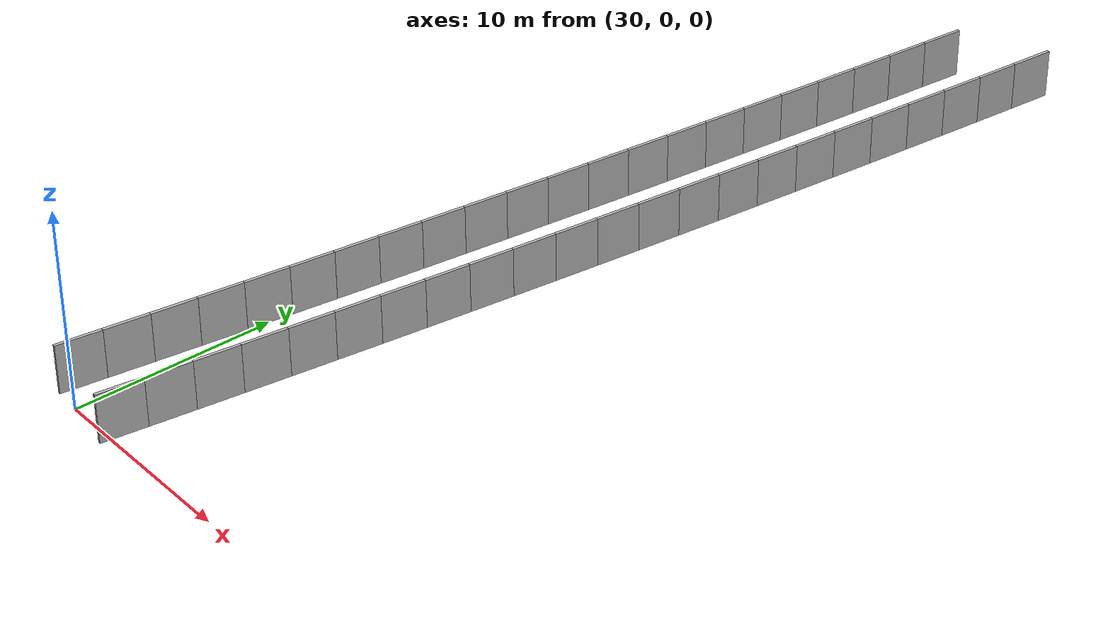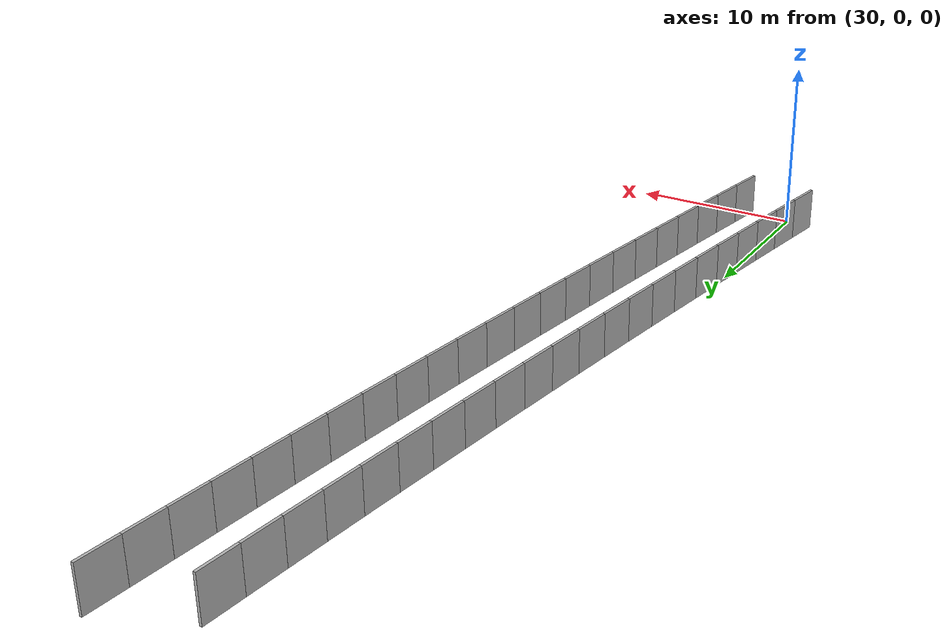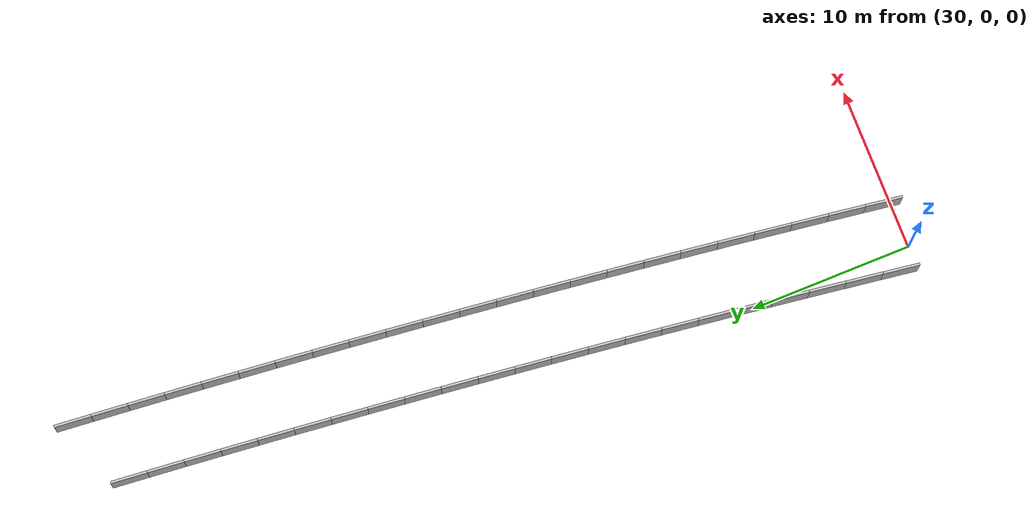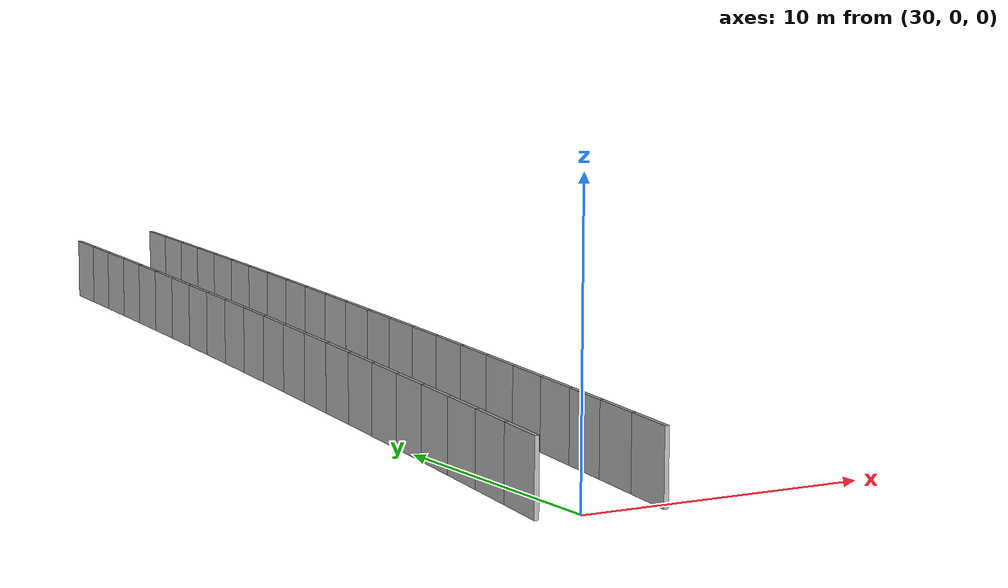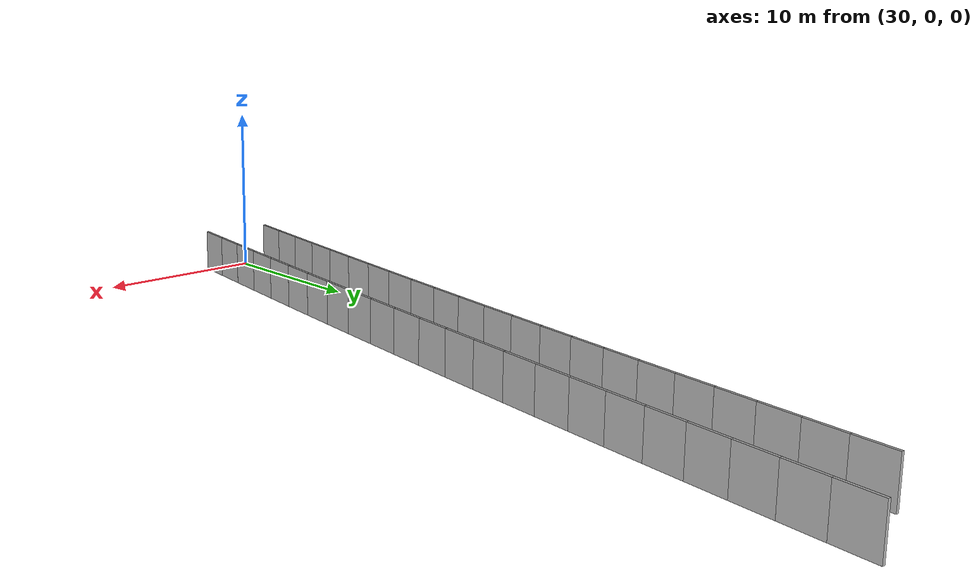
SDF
<?xml version="1.0" ?>
<sdf version="1.6">
  <model name="sps_4622">
    <pose frame="">0 0 0 0 -0 0</pose>
    <static>1</static>
    <self_collide>0</self_collide>
    <allow_auto_disable>0</allow_auto_disable>
    <link name="Wall4487">
      <kinematic>0</kinematic>
      <gravity>1</gravity>
      <self_collide>0</self_collide>
      <collision name="collision">
        <geometry>
          <box>
            <size>2.25472 0.15 2.5</size>
          </box>
        </geometry>
        <pose frame="">0 0 0 0 -0 0</pose>
      </collision>
      <visual name="visual">
        <geometry>
          <box>
            <size>2.25472 0.15 2.5</size>
          </box>
        </geometry>
        <pose frame="">0 0 0 0 -0 0</pose>
        <cast_shadows>1</cast_shadows>
        <transparency>0.0</transparency>
      </visual>
      <pose frame="">32.792 0.606795 1.25 0 -0 1.42792</pose>
    </link>
    <link name="Wall4488">
      <kinematic>0</kinematic>
      <gravity>1</gravity>
      <self_collide>0</self_collide>
      <collision name="collision">
        <geometry>
          <box>
            <size>2.25461 0.15 2.5</size>
          </box>
        </geometry>
        <pose frame="">0 0 0 0 -0 0</pose>
      </collision>
      <visual name="visual">
        <geometry>
          <box>
            <size>2.25461 0.15 2.5</size>
          </box>
        </geometry>
        <pose frame="">0 0 0 0 -0 0</pose>
        <cast_shadows>1</cast_shadows>
        <transparency>0.0</transparency>
      </visual>
      <pose frame="">33.1103 2.83888 1.25 0 -0 1.43038</pose>
    </link>
    <link name="Wall4489">
      <kinematic>0</kinematic>
      <gravity>1</gravity>
      <self_collide>0</self_collide>
      <collision name="collision">
        <geometry>
          <box>
            <size>2.25466 0.15 2.5</size>
          </box>
        </geometry>
        <pose frame="">0 0 0 0 -0 0</pose>
      </collision>
      <visual name="visual">
        <geometry>
          <box>
            <size>2.25466 0.15 2.5</size>
          </box>
        </geometry>
        <pose frame="">0 0 0 0 -0 0</pose>
        <cast_shadows>1</cast_shadows>
        <transparency>0.0</transparency>
      </visual>
      <pose frame="">33.4231 5.0717 1.25 0 -0 1.43276</pose>
    </link>
    <link name="Wall4490">
      <kinematic>0</kinematic>
      <gravity>1</gravity>
      <self_collide>0</self_collide>
      <collision name="collision">
        <geometry>
          <box>
            <size>2.25449 0.15 2.5</size>
          </box>
        </geometry>
        <pose frame="">0 0 0 0 -0 0</pose>
      </collision>
      <visual name="visual">
        <geometry>
          <box>
            <size>2.25449 0.15 2.5</size>
          </box>
        </geometry>
        <pose frame="">0 0 0 0 -0 0</pose>
        <cast_shadows>1</cast_shadows>
        <transparency>0.0</transparency>
      </visual>
      <pose frame="">33.7308 7.30519 1.25 0 -0 1.4351</pose>
    </link>
    <link name="Wall4491">
      <kinematic>0</kinematic>
      <gravity>1</gravity>
      <self_collide>0</self_collide>
      <collision name="collision">
        <geometry>
          <box>
            <size>2.25464 0.15 2.5</size>
          </box>
        </geometry>
        <pose frame="">0 0 0 0 -0 0</pose>
      </collision>
      <visual name="visual">
        <geometry>
          <box>
            <size>2.25464 0.15 2.5</size>
          </box>
        </geometry>
        <pose frame="">0 0 0 0 -0 0</pose>
        <cast_shadows>1</cast_shadows>
        <transparency>0.0</transparency>
      </visual>
      <pose frame="">34.0332 9.53938 1.25 0 -0 1.43743</pose>
    </link>
    <link name="Wall4492">
      <kinematic>0</kinematic>
      <gravity>1</gravity>
      <self_collide>0</self_collide>
      <collision name="collision">
        <geometry>
          <box>
            <size>2.25469 0.15 2.5</size>
          </box>
        </geometry>
        <pose frame="">0 0 0 0 -0 0</pose>
      </collision>
      <visual name="visual">
        <geometry>
          <box>
            <size>2.25469 0.15 2.5</size>
          </box>
        </geometry>
        <pose frame="">0 0 0 0 -0 0</pose>
        <cast_shadows>1</cast_shadows>
        <transparency>0.0</transparency>
      </visual>
      <pose frame="">34.3302 11.7744 1.25 0 -0 1.43994</pose>
    </link>
    <link name="Wall4493">
      <kinematic>0</kinematic>
      <gravity>1</gravity>
      <self_collide>0</self_collide>
      <collision name="collision">
        <geometry>
          <box>
            <size>2.25458 0.15 2.5</size>
          </box>
        </geometry>
        <pose frame="">0 0 0 0 -0 0</pose>
      </collision>
      <visual name="visual">
        <geometry>
          <box>
            <size>2.25458 0.15 2.5</size>
          </box>
        </geometry>
        <pose frame="">0 0 0 0 -0 0</pose>
        <cast_shadows>1</cast_shadows>
        <transparency>0.0</transparency>
      </visual>
      <pose frame="">34.6218 14.0101 1.25 0 -0 1.44218</pose>
    </link>
    <link name="Wall4494">
      <kinematic>0</kinematic>
      <gravity>1</gravity>
      <self_collide>0</self_collide>
      <collision name="collision">
        <geometry>
          <box>
            <size>2.25475 0.15 2.5</size>
          </box>
        </geometry>
        <pose frame="">0 0 0 0 -0 0</pose>
      </collision>
      <visual name="visual">
        <geometry>
          <box>
            <size>2.25475 0.15 2.5</size>
          </box>
        </geometry>
        <pose frame="">0 0 0 0 -0 0</pose>
        <cast_shadows>1</cast_shadows>
        <transparency>0.0</transparency>
      </visual>
      <pose frame="">34.9083 16.2465 1.25 0 -0 1.44459</pose>
    </link>
    <link name="Wall4495">
      <kinematic>0</kinematic>
      <gravity>1</gravity>
      <self_collide>0</self_collide>
      <collision name="collision">
        <geometry>
          <box>
            <size>2.25444 0.15 2.5</size>
          </box>
        </geometry>
        <pose frame="">0 0 0 0 -0 0</pose>
      </collision>
      <visual name="visual">
        <geometry>
          <box>
            <size>2.25444 0.15 2.5</size>
          </box>
        </geometry>
        <pose frame="">0 0 0 0 -0 0</pose>
        <cast_shadows>1</cast_shadows>
        <transparency>0.0</transparency>
      </visual>
      <pose frame="">35.1894 18.4835 1.25 0 -0 1.447</pose>
    </link>
    <link name="Wall4496">
      <kinematic>0</kinematic>
      <gravity>1</gravity>
      <self_collide>0</self_collide>
      <collision name="collision">
        <geometry>
          <box>
            <size>2.25463 0.15 2.5</size>
          </box>
        </geometry>
        <pose frame="">0 0 0 0 -0 0</pose>
      </collision>
      <visual name="visual">
        <geometry>
          <box>
            <size>2.25463 0.15 2.5</size>
          </box>
        </geometry>
        <pose frame="">0 0 0 0 -0 0</pose>
        <cast_shadows>1</cast_shadows>
        <transparency>0.0</transparency>
      </visual>
      <pose frame="">35.4651 20.7211 1.25 0 -0 1.44941</pose>
    </link>
    <link name="Wall4497">
      <kinematic>0</kinematic>
      <gravity>1</gravity>
      <self_collide>0</self_collide>
      <collision name="collision">
        <geometry>
          <box>
            <size>2.25473 0.15 2.5</size>
          </box>
        </geometry>
        <pose frame="">0 0 0 0 -0 0</pose>
      </collision>
      <visual name="visual">
        <geometry>
          <box>
            <size>2.25473 0.15 2.5</size>
          </box>
        </geometry>
        <pose frame="">0 0 0 0 -0 0</pose>
        <cast_shadows>1</cast_shadows>
        <transparency>0.0</transparency>
      </visual>
      <pose frame="">35.7356 22.9595 1.25 0 -0 1.45173</pose>
    </link>
    <link name="Wall4498">
      <kinematic>0</kinematic>
      <gravity>1</gravity>
      <self_collide>0</self_collide>
      <collision name="collision">
        <geometry>
          <box>
            <size>2.25454 0.15 2.5</size>
          </box>
        </geometry>
        <pose frame="">0 0 0 0 -0 0</pose>
      </collision>
      <visual name="visual">
        <geometry>
          <box>
            <size>2.25454 0.15 2.5</size>
          </box>
        </geometry>
        <pose frame="">0 0 0 0 -0 0</pose>
        <cast_shadows>1</cast_shadows>
        <transparency>0.0</transparency>
      </visual>
      <pose frame="">36.0008 25.1985 1.25 0 -0 1.45407</pose>
    </link>
    <link name="Wall4499">
      <kinematic>0</kinematic>
      <gravity>1</gravity>
      <self_collide>0</self_collide>
      <collision name="collision">
        <geometry>
          <box>
            <size>2.25453 0.15 2.5</size>
          </box>
        </geometry>
        <pose frame="">0 0 0 0 -0 0</pose>
      </collision>
      <visual name="visual">
        <geometry>
          <box>
            <size>2.25453 0.15 2.5</size>
          </box>
        </geometry>
        <pose frame="">0 0 0 0 -0 0</pose>
        <cast_shadows>1</cast_shadows>
        <transparency>0.0</transparency>
      </visual>
      <pose frame="">36.2606 27.438 1.25 0 -0 1.45646</pose>
    </link>
    <link name="Wall4500">
      <kinematic>0</kinematic>
      <gravity>1</gravity>
      <self_collide>0</self_collide>
      <collision name="collision">
        <geometry>
          <box>
            <size>2.25471 0.15 2.5</size>
          </box>
        </geometry>
        <pose frame="">0 0 0 0 -0 0</pose>
      </collision>
      <visual name="visual">
        <geometry>
          <box>
            <size>2.25471 0.15 2.5</size>
          </box>
        </geometry>
        <pose frame="">0 0 0 0 -0 0</pose>
        <cast_shadows>1</cast_shadows>
        <transparency>0.0</transparency>
      </visual>
      <pose frame="">36.5152 29.6782 1.25 0 -0 1.45887</pose>
    </link>
    <link name="Wall4501">
      <kinematic>0</kinematic>
      <gravity>1</gravity>
      <self_collide>0</self_collide>
      <collision name="collision">
        <geometry>
          <box>
            <size>2.25469 0.15 2.5</size>
          </box>
        </geometry>
        <pose frame="">0 0 0 0 -0 0</pose>
      </collision>
      <visual name="visual">
        <geometry>
          <box>
            <size>2.25469 0.15 2.5</size>
          </box>
        </geometry>
        <pose frame="">0 0 0 0 -0 0</pose>
        <cast_shadows>1</cast_shadows>
        <transparency>0.0</transparency>
      </visual>
      <pose frame="">36.7642 31.9191 1.25 0 -0 1.4614</pose>
    </link>
    <link name="Wall4502">
      <kinematic>0</kinematic>
      <gravity>1</gravity>
      <self_collide>0</self_collide>
      <collision name="collision">
        <geometry>
          <box>
            <size>2.25476 0.15 2.5</size>
          </box>
        </geometry>
        <pose frame="">0 0 0 0 -0 0</pose>
      </collision>
      <visual name="visual">
        <geometry>
          <box>
            <size>2.25476 0.15 2.5</size>
          </box>
        </geometry>
        <pose frame="">0 0 0 0 -0 0</pose>
        <cast_shadows>1</cast_shadows>
        <transparency>0.0</transparency>
      </visual>
      <pose frame="">37.0078 34.1606 1.25 0 -0 1.46361</pose>
    </link>
    <link name="Wall4503">
      <kinematic>0</kinematic>
      <gravity>1</gravity>
      <self_collide>0</self_collide>
      <collision name="collision">
        <geometry>
          <box>
            <size>2.25439 0.15 2.5</size>
          </box>
        </geometry>
        <pose frame="">0 0 0 0 -0 0</pose>
      </collision>
      <visual name="visual">
        <geometry>
          <box>
            <size>2.25439 0.15 2.5</size>
          </box>
        </geometry>
        <pose frame="">0 0 0 0 -0 0</pose>
        <cast_shadows>1</cast_shadows>
        <transparency>0.0</transparency>
      </visual>
      <pose frame="">37.2465 36.4025 1.25 0 -0 1.46591</pose>
    </link>
    <link name="Wall4504">
      <kinematic>0</kinematic>
      <gravity>1</gravity>
      <self_collide>0</self_collide>
      <collision name="collision">
        <geometry>
          <box>
            <size>2.25478 0.15 2.5</size>
          </box>
        </geometry>
        <pose frame="">0 0 0 0 -0 0</pose>
      </collision>
      <visual name="visual">
        <geometry>
          <box>
            <size>2.25478 0.15 2.5</size>
          </box>
        </geometry>
        <pose frame="">0 0 0 0 -0 0</pose>
        <cast_shadows>1</cast_shadows>
        <transparency>0.0</transparency>
      </visual>
      <pose frame="">37.4797 38.645 1.25 0 -0 1.46843</pose>
    </link>
    <link name="Wall4505">
      <kinematic>0</kinematic>
      <gravity>1</gravity>
      <self_collide>0</self_collide>
      <collision name="collision">
        <geometry>
          <box>
            <size>2.2545 0.15 2.5</size>
          </box>
        </geometry>
        <pose frame="">0 0 0 0 -0 0</pose>
      </collision>
      <visual name="visual">
        <geometry>
          <box>
            <size>2.2545 0.15 2.5</size>
          </box>
        </geometry>
        <pose frame="">0 0 0 0 -0 0</pose>
        <cast_shadows>1</cast_shadows>
        <transparency>0.0</transparency>
      </visual>
      <pose frame="">37.7075 40.8881 1.25 0 -0 1.47076</pose>
    </link>
    <link name="Wall4506">
      <kinematic>0</kinematic>
      <gravity>1</gravity>
      <self_collide>0</self_collide>
      <collision name="collision">
        <geometry>
          <box>
            <size>2.25454 0.15 2.5</size>
          </box>
        </geometry>
        <pose frame="">0 0 0 0 -0 0</pose>
      </collision>
      <visual name="visual">
        <geometry>
          <box>
            <size>2.25454 0.15 2.5</size>
          </box>
        </geometry>
        <pose frame="">0 0 0 0 -0 0</pose>
        <cast_shadows>1</cast_shadows>
        <transparency>0.0</transparency>
      </visual>
      <pose frame="">37.93 43.1316 1.25 0 -0 1.47305</pose>
    </link>
    <link name="Wall4507">
      <kinematic>0</kinematic>
      <gravity>1</gravity>
      <self_collide>0</self_collide>
      <collision name="collision">
        <geometry>
          <box>
            <size>2.25486 0.15 2.5</size>
          </box>
        </geometry>
        <pose frame="">0 0 0 0 -0 0</pose>
      </collision>
      <visual name="visual">
        <geometry>
          <box>
            <size>2.25486 0.15 2.5</size>
          </box>
        </geometry>
        <pose frame="">0 0 0 0 -0 0</pose>
        <cast_shadows>1</cast_shadows>
        <transparency>0.0</transparency>
      </visual>
      <pose frame="">38.1474 45.3758 1.25 0 -0 1.47548</pose>
    </link>
    <link name="Wall4508">
      <kinematic>0</kinematic>
      <gravity>1</gravity>
      <self_collide>0</self_collide>
      <collision name="collision">
        <geometry>
          <box>
            <size>2.25446 0.15 2.5</size>
          </box>
        </geometry>
        <pose frame="">0 0 0 0 -0 0</pose>
      </collision>
      <visual name="visual">
        <geometry>
          <box>
            <size>2.25446 0.15 2.5</size>
          </box>
        </geometry>
        <pose frame="">0 0 0 0 -0 0</pose>
        <cast_shadows>1</cast_shadows>
        <transparency>0.0</transparency>
      </visual>
      <pose frame="">38.3592 47.6205 1.25 0 -0 1.47796</pose>
    </link>
    <link name="Wall4509">
      <kinematic>0</kinematic>
      <gravity>1</gravity>
      <self_collide>0</self_collide>
      <collision name="collision">
        <geometry>
          <box>
            <size>2.25465 0.15 2.5</size>
          </box>
        </geometry>
        <pose frame="">0 0 0 0 -0 0</pose>
      </collision>
      <visual name="visual">
        <geometry>
          <box>
            <size>2.25465 0.15 2.5</size>
          </box>
        </geometry>
        <pose frame="">0 0 0 0 -0 0</pose>
        <cast_shadows>1</cast_shadows>
        <transparency>0.0</transparency>
      </visual>
      <pose frame="">38.5655 49.8656 1.25 0 -0 1.48028</pose>
    </link>
    <link name="Wall6212">
      <kinematic>0</kinematic>
      <gravity>1</gravity>
      <self_collide>0</self_collide>
      <collision name="collision">
        <geometry>
          <box>
            <size>2.24482 0.15 2.5</size>
          </box>
        </geometry>
        <pose frame="">0 0 0 0 -0 0</pose>
      </collision>
      <visual name="visual">
        <geometry>
          <box>
            <size>2.24482 0.15 2.5</size>
          </box>
        </geometry>
        <pose frame="">0 0 0 0 -0 0</pose>
        <cast_shadows>1</cast_shadows>
        <transparency>0.0</transparency>
      </visual>
      <pose frame="">28.6948 1.19591 1.25 0 -0 1.42803</pose>
    </link>
    <link name="Wall6213">
      <kinematic>0</kinematic>
      <gravity>1</gravity>
      <self_collide>0</self_collide>
      <collision name="collision">
        <geometry>
          <box>
            <size>2.2449 0.15 2.5</size>
          </box>
        </geometry>
        <pose frame="">0 0 0 0 -0 0</pose>
      </collision>
      <visual name="visual">
        <geometry>
          <box>
            <size>2.2449 0.15 2.5</size>
          </box>
        </geometry>
        <pose frame="">0 0 0 0 -0 0</pose>
        <cast_shadows>1</cast_shadows>
        <transparency>0.0</transparency>
      </visual>
      <pose frame="">29.0116 3.41829 1.25 0 -0 1.43029</pose>
    </link>
    <link name="Wall6214">
      <kinematic>0</kinematic>
      <gravity>1</gravity>
      <self_collide>0</self_collide>
      <collision name="collision">
        <geometry>
          <box>
            <size>2.24474 0.15 2.5</size>
          </box>
        </geometry>
        <pose frame="">0 0 0 0 -0 0</pose>
      </collision>
      <visual name="visual">
        <geometry>
          <box>
            <size>2.24474 0.15 2.5</size>
          </box>
        </geometry>
        <pose frame="">0 0 0 0 -0 0</pose>
        <cast_shadows>1</cast_shadows>
        <transparency>0.0</transparency>
      </visual>
      <pose frame="">29.3233 5.64137 1.25 0 -0 1.43278</pose>
    </link>
    <link name="Wall6215">
      <kinematic>0</kinematic>
      <gravity>1</gravity>
      <self_collide>0</self_collide>
      <collision name="collision">
        <geometry>
          <box>
            <size>2.24465 0.15 2.5</size>
          </box>
        </geometry>
        <pose frame="">0 0 0 0 -0 0</pose>
      </collision>
      <visual name="visual">
        <geometry>
          <box>
            <size>2.24465 0.15 2.5</size>
          </box>
        </geometry>
        <pose frame="">0 0 0 0 -0 0</pose>
        <cast_shadows>1</cast_shadows>
        <transparency>0.0</transparency>
      </visual>
      <pose frame="">29.6296 7.86507 1.25 0 -0 1.43505</pose>
    </link>
    <link name="Wall6216">
      <kinematic>0</kinematic>
      <gravity>1</gravity>
      <self_collide>0</self_collide>
      <collision name="collision">
        <geometry>
          <box>
            <size>2.24496 0.15 2.5</size>
          </box>
        </geometry>
        <pose frame="">0 0 0 0 -0 0</pose>
      </collision>
      <visual name="visual">
        <geometry>
          <box>
            <size>2.24496 0.15 2.5</size>
          </box>
        </geometry>
        <pose frame="">0 0 0 0 -0 0</pose>
        <cast_shadows>1</cast_shadows>
        <transparency>0.0</transparency>
      </visual>
      <pose frame="">29.9307 10.0896 1.25 0 -0 1.43748</pose>
    </link>
    <link name="Wall6217">
      <kinematic>0</kinematic>
      <gravity>1</gravity>
      <self_collide>0</self_collide>
      <collision name="collision">
        <geometry>
          <box>
            <size>2.24479 0.15 2.5</size>
          </box>
        </geometry>
        <pose frame="">0 0 0 0 -0 0</pose>
      </collision>
      <visual name="visual">
        <geometry>
          <box>
            <size>2.24479 0.15 2.5</size>
          </box>
        </geometry>
        <pose frame="">0 0 0 0 -0 0</pose>
        <cast_shadows>1</cast_shadows>
        <transparency>0.0</transparency>
      </visual>
      <pose frame="">30.2264 12.3149 1.25 0 -0 1.43989</pose>
    </link>
    <link name="Wall6218">
      <kinematic>0</kinematic>
      <gravity>1</gravity>
      <self_collide>0</self_collide>
      <collision name="collision">
        <geometry>
          <box>
            <size>2.2447 0.15 2.5</size>
          </box>
        </geometry>
        <pose frame="">0 0 0 0 -0 0</pose>
      </collision>
      <visual name="visual">
        <geometry>
          <box>
            <size>2.2447 0.15 2.5</size>
          </box>
        </geometry>
        <pose frame="">0 0 0 0 -0 0</pose>
        <cast_shadows>1</cast_shadows>
        <transparency>0.0</transparency>
      </visual>
      <pose frame="">30.5167 14.5408 1.25 0 -0 1.44232</pose>
    </link>
    <link name="Wall6219">
      <kinematic>0</kinematic>
      <gravity>1</gravity>
      <self_collide>0</self_collide>
      <collision name="collision">
        <geometry>
          <box>
            <size>2.24487 0.15 2.5</size>
          </box>
        </geometry>
        <pose frame="">0 0 0 0 -0 0</pose>
      </collision>
      <visual name="visual">
        <geometry>
          <box>
            <size>2.24487 0.15 2.5</size>
          </box>
        </geometry>
        <pose frame="">0 0 0 0 -0 0</pose>
        <cast_shadows>1</cast_shadows>
        <transparency>0.0</transparency>
      </visual>
      <pose frame="">30.8019 16.7674 1.25 0 -0 1.4445</pose>
    </link>
    <link name="Wall6220">
      <kinematic>0</kinematic>
      <gravity>1</gravity>
      <self_collide>0</self_collide>
      <collision name="collision">
        <geometry>
          <box>
            <size>2.24475 0.15 2.5</size>
          </box>
        </geometry>
        <pose frame="">0 0 0 0 -0 0</pose>
      </collision>
      <visual name="visual">
        <geometry>
          <box>
            <size>2.24475 0.15 2.5</size>
          </box>
        </geometry>
        <pose frame="">0 0 0 0 -0 0</pose>
        <cast_shadows>1</cast_shadows>
        <transparency>0.0</transparency>
      </visual>
      <pose frame="">31.0817 18.9947 1.25 0 -0 1.44709</pose>
    </link>
    <link name="Wall6221">
      <kinematic>0</kinematic>
      <gravity>1</gravity>
      <self_collide>0</self_collide>
      <collision name="collision">
        <geometry>
          <box>
            <size>2.24457 0.15 2.5</size>
          </box>
        </geometry>
        <pose frame="">0 0 0 0 -0 0</pose>
      </collision>
      <visual name="visual">
        <geometry>
          <box>
            <size>2.24457 0.15 2.5</size>
          </box>
        </geometry>
        <pose frame="">0 0 0 0 -0 0</pose>
        <cast_shadows>1</cast_shadows>
        <transparency>0.0</transparency>
      </visual>
      <pose frame="">31.3563 21.2225 1.25 0 -0 1.4493</pose>
    </link>
    <link name="Wall6222">
      <kinematic>0</kinematic>
      <gravity>1</gravity>
      <self_collide>0</self_collide>
      <collision name="collision">
        <geometry>
          <box>
            <size>2.24509 0.15 2.5</size>
          </box>
        </geometry>
        <pose frame="">0 0 0 0 -0 0</pose>
      </collision>
      <visual name="visual">
        <geometry>
          <box>
            <size>2.24509 0.15 2.5</size>
          </box>
        </geometry>
        <pose frame="">0 0 0 0 -0 0</pose>
        <cast_shadows>1</cast_shadows>
        <transparency>0.0</transparency>
      </visual>
      <pose frame="">31.6257 23.4511 1.25 0 -0 1.45168</pose>
    </link>
    <link name="Wall6223">
      <kinematic>0</kinematic>
      <gravity>1</gravity>
      <self_collide>0</self_collide>
      <collision name="collision">
        <geometry>
          <box>
            <size>2.24466 0.15 2.5</size>
          </box>
        </geometry>
        <pose frame="">0 0 0 0 -0 0</pose>
      </collision>
      <visual name="visual">
        <geometry>
          <box>
            <size>2.24466 0.15 2.5</size>
          </box>
        </geometry>
        <pose frame="">0 0 0 0 -0 0</pose>
        <cast_shadows>1</cast_shadows>
        <transparency>0.0</transparency>
      </visual>
      <pose frame="">31.8895 25.6804 1.25 0 -0 1.45426</pose>
    </link>
    <link name="Wall6224">
      <kinematic>0</kinematic>
      <gravity>1</gravity>
      <self_collide>0</self_collide>
      <collision name="collision">
        <geometry>
          <box>
            <size>2.24481 0.15 2.5</size>
          </box>
        </geometry>
        <pose frame="">0 0 0 0 -0 0</pose>
      </collision>
      <visual name="visual">
        <geometry>
          <box>
            <size>2.24481 0.15 2.5</size>
          </box>
        </geometry>
        <pose frame="">0 0 0 0 -0 0</pose>
        <cast_shadows>1</cast_shadows>
        <transparency>0.0</transparency>
      </visual>
      <pose frame="">32.1481 27.9102 1.25 0 -0 1.45649</pose>
    </link>
    <link name="Wall6225">
      <kinematic>0</kinematic>
      <gravity>1</gravity>
      <self_collide>0</self_collide>
      <collision name="collision">
        <geometry>
          <box>
            <size>2.24465 0.15 2.5</size>
          </box>
        </geometry>
        <pose frame="">0 0 0 0 -0 0</pose>
      </collision>
      <visual name="visual">
        <geometry>
          <box>
            <size>2.24465 0.15 2.5</size>
          </box>
        </geometry>
        <pose frame="">0 0 0 0 -0 0</pose>
        <cast_shadows>1</cast_shadows>
        <transparency>0.0</transparency>
      </visual>
      <pose frame="">32.4015 30.1406 1.25 0 -0 1.45883</pose>
    </link>
    <link name="Wall6226">
      <kinematic>0</kinematic>
      <gravity>1</gravity>
      <self_collide>0</self_collide>
      <collision name="collision">
        <geometry>
          <box>
            <size>2.24489 0.15 2.5</size>
          </box>
        </geometry>
        <pose frame="">0 0 0 0 -0 0</pose>
      </collision>
      <visual name="visual">
        <geometry>
          <box>
            <size>2.24489 0.15 2.5</size>
          </box>
        </geometry>
        <pose frame="">0 0 0 0 -0 0</pose>
        <cast_shadows>1</cast_shadows>
        <transparency>0.0</transparency>
      </visual>
      <pose frame="">32.6496 32.3716 1.25 0 -0 1.46128</pose>
    </link>
    <link name="Wall6227">
      <kinematic>0</kinematic>
      <gravity>1</gravity>
      <self_collide>0</self_collide>
      <collision name="collision">
        <geometry>
          <box>
            <size>2.24464 0.15 2.5</size>
          </box>
        </geometry>
        <pose frame="">0 0 0 0 -0 0</pose>
      </collision>
      <visual name="visual">
        <geometry>
          <box>
            <size>2.24464 0.15 2.5</size>
          </box>
        </geometry>
        <pose frame="">0 0 0 0 -0 0</pose>
        <cast_shadows>1</cast_shadows>
        <transparency>0.0</transparency>
      </visual>
      <pose frame="">32.8924 34.6032 1.25 0 -0 1.46357</pose>
    </link>
    <link name="Wall6228">
      <kinematic>0</kinematic>
      <gravity>1</gravity>
      <self_collide>0</self_collide>
      <collision name="collision">
        <geometry>
          <box>
            <size>2.24492 0.15 2.5</size>
          </box>
        </geometry>
        <pose frame="">0 0 0 0 -0 0</pose>
      </collision>
      <visual name="visual">
        <geometry>
          <box>
            <size>2.24492 0.15 2.5</size>
          </box>
        </geometry>
        <pose frame="">0 0 0 0 -0 0</pose>
        <cast_shadows>1</cast_shadows>
        <transparency>0.0</transparency>
      </visual>
      <pose frame="">33.1299 36.8354 1.25 0 -0 1.46601</pose>
    </link>
    <link name="Wall6229">
      <kinematic>0</kinematic>
      <gravity>1</gravity>
      <self_collide>0</self_collide>
      <collision name="collision">
        <geometry>
          <box>
            <size>2.2448 0.15 2.5</size>
          </box>
        </geometry>
        <pose frame="">0 0 0 0 -0 0</pose>
      </collision>
      <visual name="visual">
        <geometry>
          <box>
            <size>2.2448 0.15 2.5</size>
          </box>
        </geometry>
        <pose frame="">0 0 0 0 -0 0</pose>
        <cast_shadows>1</cast_shadows>
        <transparency>0.0</transparency>
      </visual>
      <pose frame="">33.3621 39.0682 1.25 0 -0 1.46836</pose>
    </link>
    <link name="Wall6230">
      <kinematic>0</kinematic>
      <gravity>1</gravity>
      <self_collide>0</self_collide>
      <collision name="collision">
        <geometry>
          <box>
            <size>2.24481 0.15 2.5</size>
          </box>
        </geometry>
        <pose frame="">0 0 0 0 -0 0</pose>
      </collision>
      <visual name="visual">
        <geometry>
          <box>
            <size>2.24481 0.15 2.5</size>
          </box>
        </geometry>
        <pose frame="">0 0 0 0 -0 0</pose>
        <cast_shadows>1</cast_shadows>
        <transparency>0.0</transparency>
      </visual>
      <pose frame="">33.589 41.3015 1.25 0 -0 1.47074</pose>
    </link>
    <link name="Wall6231">
      <kinematic>0</kinematic>
      <gravity>1</gravity>
      <self_collide>0</self_collide>
      <collision name="collision">
        <geometry>
          <box>
            <size>2.2447 0.15 2.5</size>
          </box>
        </geometry>
        <pose frame="">0 0 0 0 -0 0</pose>
      </collision>
      <visual name="visual">
        <geometry>
          <box>
            <size>2.2447 0.15 2.5</size>
          </box>
        </geometry>
        <pose frame="">0 0 0 0 -0 0</pose>
        <cast_shadows>1</cast_shadows>
        <transparency>0.0</transparency>
      </visual>
      <pose frame="">33.8105 43.5353 1.25 0 -0 1.47316</pose>
    </link>
    <link name="Wall6232">
      <kinematic>0</kinematic>
      <gravity>1</gravity>
      <self_collide>0</self_collide>
      <collision name="collision">
        <geometry>
          <box>
            <size>2.24482 0.15 2.5</size>
          </box>
        </geometry>
        <pose frame="">0 0 0 0 -0 0</pose>
      </collision>
      <visual name="visual">
        <geometry>
          <box>
            <size>2.24482 0.15 2.5</size>
          </box>
        </geometry>
        <pose frame="">0 0 0 0 -0 0</pose>
        <cast_shadows>1</cast_shadows>
        <transparency>0.0</transparency>
      </visual>
      <pose frame="">34.0268 45.7696 1.25 0 -0 1.47543</pose>
    </link>
    <link name="Wall6233">
      <kinematic>0</kinematic>
      <gravity>1</gravity>
      <self_collide>0</self_collide>
      <collision name="collision">
        <geometry>
          <box>
            <size>2.24483 0.15 2.5</size>
          </box>
        </geometry>
        <pose frame="">0 0 0 0 -0 0</pose>
      </collision>
      <visual name="visual">
        <geometry>
          <box>
            <size>2.24483 0.15 2.5</size>
          </box>
        </geometry>
        <pose frame="">0 0 0 0 -0 0</pose>
        <cast_shadows>1</cast_shadows>
        <transparency>0.0</transparency>
      </visual>
      <pose frame="">34.2376 48.0045 1.25 0 -0 1.478</pose>
    </link>
  </model>
</sdf>
